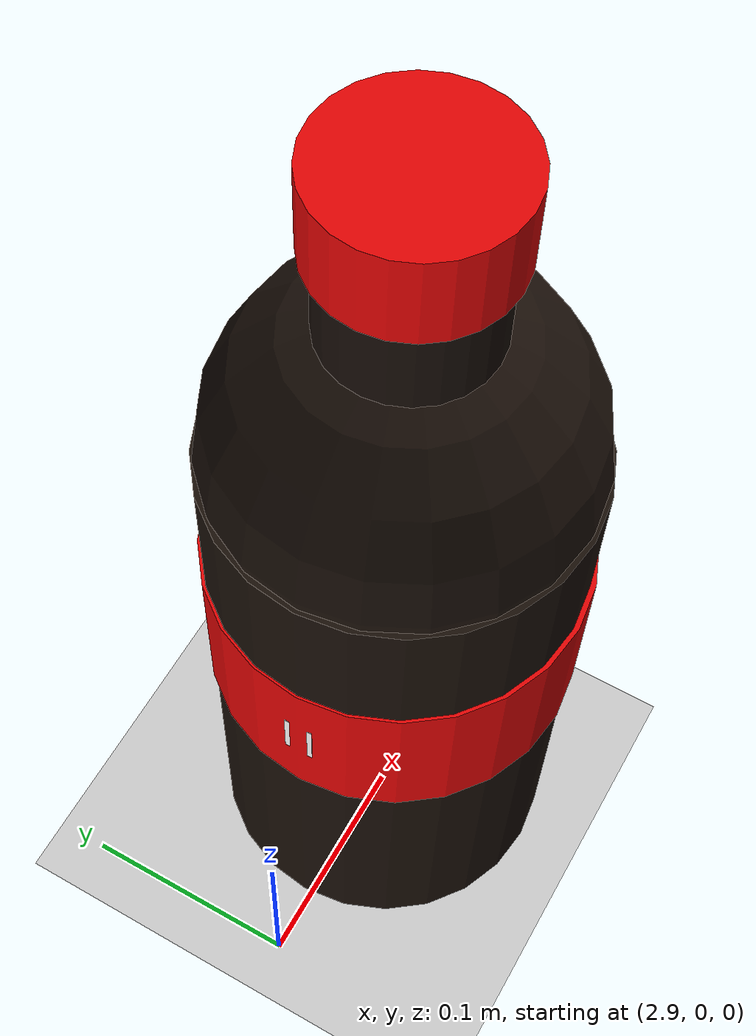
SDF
<?xml version="1.0" ?>
<sdf version="1.9">
  <world name="litterbot_world">

    <physics name="1ms" type="ignored">
      <max_step_size>0.001</max_step_size>
      <real_time_factor>1.0</real_time_factor>
    </physics>

    <plugin filename="ignition-gazebo-physics-system"
            name="ignition::gazebo::systems::Physics"/>
    <plugin filename="ignition-gazebo-user-commands-system"
            name="ignition::gazebo::systems::UserCommands"/>
    <plugin filename="ignition-gazebo-scene-broadcaster-system"
            name="ignition::gazebo::systems::SceneBroadcaster"/>
    <plugin filename="ignition-gazebo-sensors-system"
            name="ignition::gazebo::systems::Sensors">
      <render_engine>ogre</render_engine>
    </plugin>

    <light type="directional" name="sun">
      <cast_shadows>true</cast_shadows>
      <pose>0 0 10 0 0 0</pose>
      <diffuse>0.8 0.8 0.8 1</diffuse>
      <specular>0.2 0.2 0.2 1</specular>
      <direction>0.5 -0.1 -0.9</direction>
    </light>

    <model name="ground_plane">
      <static>true</static>
      <link name="link">
        <collision name="collision">
          <geometry>
            <plane>
              <normal>0 0 1</normal>
              <size>30 30</size>
            </plane>
          </geometry>
        </collision>
        <visual name="visual">
          <geometry>
            <plane>
              <normal>0 0 1</normal>
              <size>30 30</size>
            </plane>
          </geometry>
          <material>
            <ambient>0.8 0.8 0.8 1</ambient>
            <diffuse>0.8 0.8 0.8 1</diffuse>
          </material>
        </visual>
      </link>
    </model>

    <model name="target_coke_can">
      <static>true</static>
      <pose>3 0 0.19 0 0 0</pose>
      <link name="link">
        <collision name="body_collision">
          <pose>0 0 -0.035 0 0 0</pose>
          <geometry>
            <cylinder>
              <radius>0.075</radius>
              <length>0.27</length>
            </cylinder>
          </geometry>
        </collision>
        <collision name="neck_collision">
          <pose>0 0 0.135 0 0 0</pose>
          <geometry>
            <cylinder>
              <radius>0.032</radius>
              <length>0.12</length>
            </cylinder>
          </geometry>
        </collision>

        <visual name="bottle_body">
          <pose>0 0 -0.035 0 0 0</pose>
          <geometry>
            <cylinder>
              <radius>0.075</radius>
              <length>0.27</length>
            </cylinder>
          </geometry>
          <material>
            <ambient>0.06 0.035 0.02 1</ambient>
            <diffuse>0.10 0.06 0.035 1</diffuse>
            <specular>0.8 0.8 0.8 1</specular>
          </material>
        </visual>
        <visual name="red_label_front">
          <pose>0.001 0 0.0 0 0 0</pose>
          <geometry>
            <cylinder>
              <radius>0.077</radius>
              <length>0.075</length>
            </cylinder>
          </geometry>
          <material>
            <ambient>0.9 0.02 0.02 1</ambient>
            <diffuse>0.9 0.02 0.02 1</diffuse>
            <specular>0.2 0.2 0.2 1</specular>
          </material>
        </visual>
        <visual name="white_label_band">
          <pose>0.002 0 0.0 0 0 0</pose>
          <geometry>
            <box>
              <size>0.155 0.012 0.022</size>
            </box>
          </geometry>
          <material>
            <ambient>1 1 1 1</ambient>
            <diffuse>1 1 1 1</diffuse>
            <specular>0.1 0.1 0.1 1</specular>
          </material>
        </visual>
        <visual name="shoulder">
          <pose>0 0 0.105 0 0 0</pose>
          <geometry>
            <sphere>
              <radius>0.074</radius>
            </sphere>
          </geometry>
          <material>
            <ambient>0.06 0.035 0.02 1</ambient>
            <diffuse>0.10 0.06 0.035 1</diffuse>
            <specular>0.8 0.8 0.8 1</specular>
          </material>
        </visual>
        <visual name="neck">
          <pose>0 0 0.145 0 0 0</pose>
          <geometry>
            <cylinder>
              <radius>0.032</radius>
              <length>0.13</length>
            </cylinder>
          </geometry>
          <material>
            <ambient>0.055 0.032 0.018 1</ambient>
            <diffuse>0.09 0.05 0.03 1</diffuse>
            <specular>0.8 0.8 0.8 1</specular>
          </material>
        </visual>
        <visual name="red_cap">
          <pose>0 0 0.225 0 0 0</pose>
          <geometry>
            <cylinder>
              <radius>0.036</radius>
              <length>0.035</length>
            </cylinder>
          </geometry>
          <material>
            <ambient>0.9 0.02 0.02 1</ambient>
            <diffuse>0.9 0.02 0.02 1</diffuse>
            <specular>0.3 0.3 0.3 1</specular>
          </material>
        </visual>
      </link>
    </model>

  </world>
</sdf>
